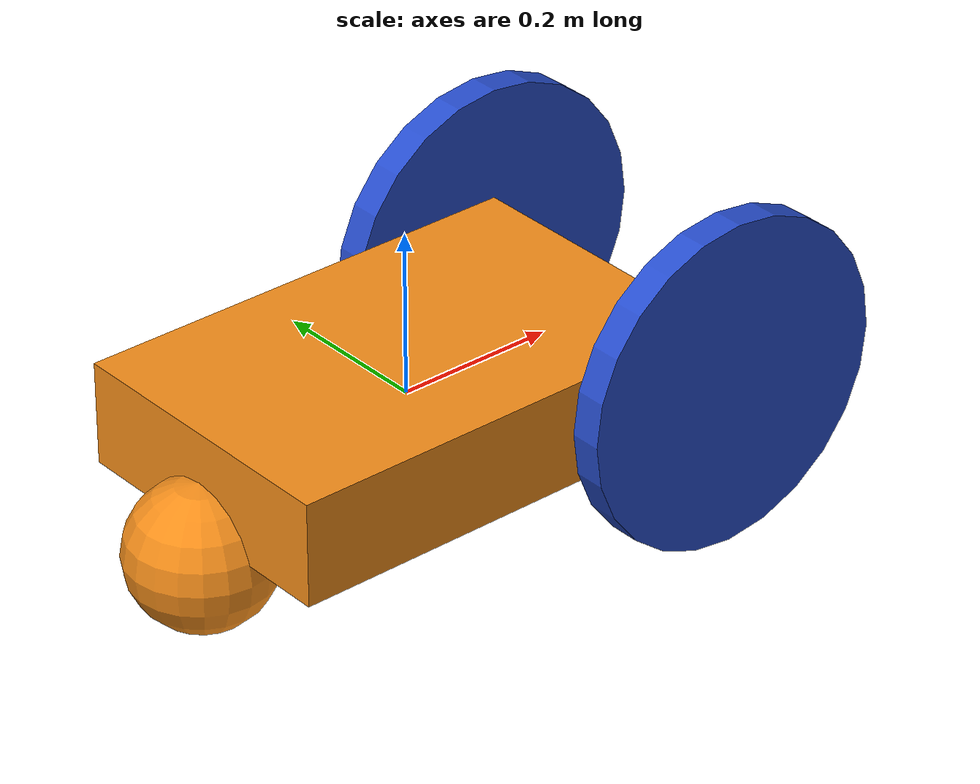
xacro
<?xml version='1.0'?>

<robot name="inmoov_base" xmlns:xacro="http://www.ros.org/wiki/xacro">

  <xacro:include filename="$(find inmoov_description)/urdf/inmoov_base.gazebo" />
  <xacro:include filename="$(find inmoov_description)/urdf/materials.urdf.xacro" />
  <xacro:include filename="$(find inmoov_description)/urdf/inmoov_base_macros.xacro" />

  <link name='chassis'>
    <pose>0 0 0.1 0 0 0</pose>

    <inertial>
      <mass value="15.0"/>
      <origin xyz="0.0 0 0.1" rpy=" 0 0 0"/>
      <inertia
          ixx="0.1" ixy="0" ixz="0"
          iyy="0.1" iyz="0"
          izz="0.1"
      />
    </inertial>

    <collision name='collision'>
      <geometry>
        <box size=".5715 .371475 .127"/>
      </geometry>
    </collision>

    <visual name='chassis_visual'>
      <origin xyz="0 0 0" rpy=" 0 0 0"/>
      <geometry>
        <box size=".5715 .371475 .127"/>
      </geometry>

    </visual>

    <collision name='caster_collision'>
      <origin xyz="-.28575 0 -0.0889" rpy=" 0 0 0"/>
      <geometry>
        <sphere radius="0.0889"/>
      </geometry>
      <surface>
        <friction>
          <ode>
            <mu>0</mu>
            <mu2>0</mu2>
            <slip1>1.0</slip1>
            <slip2>1.0</slip2>
          </ode>
        </friction>
      </surface>
    </collision>

    <visual name='caster_visual'>
      <origin xyz="-.28575 0 -0.0889" rpy=" 0 0 0"/>
      <geometry>
        <sphere radius="0.0889"/>
      </geometry>
    </visual>

  </link>

  <link name="base_laser_link">

  </link>

  <link name="left_wheel">
    <!--origin xyz="0.1 0.13 0.1" rpy="0 1.5707 1.5707"/-->
    <collision name="collision">
      <origin xyz="0 0 0" rpy="0 1.5707 1.5707"/>
      <geometry>
        <cylinder radius="0.2032" length="0.0381"/>
      </geometry>
    </collision>
    <visual name="left_wheel_visual">
      <origin xyz="0 0 0" rpy="0 1.5707 1.5707"/>
      <geometry>
        <cylinder radius="0.2032" length="0.0381"/>
      </geometry>
    </visual>
    <inertial>
      <origin xyz="0 0 0" rpy="0 1.5707 1.5707"/>
      <mass value="5"/>
      <inertia
        ixx=".1" ixy="0.0" ixz="0.0"
        iyy=".1" iyz="0.0"
        izz=".1"/>
    </inertial>
  </link>

  <link name="right_wheel">
    <!--origin xyz="0.1 -0.13 0.1" rpy="0 1.5707 1.5707"/-->
    <collision name="collision">
      <origin xyz="0 0 0" rpy="0 1.5707 1.5707"/>
      <geometry>
        <cylinder radius="0.2032" length="0.0381"/>
      </geometry>
    </collision>
    <visual name="right_wheel_visual">
      <origin xyz="0 0 0" rpy="0 1.5707 1.5707"/>
      <geometry>
        <cylinder radius="0.2032" length="0.0381"/>
      </geometry>
    </visual>
    <inertial>
      <origin xyz="0 0 0" rpy="0 1.5707 1.5707"/>
      <mass value="5"/>
      <inertia
        ixx=".1" ixy="0.0" ixz="0.0"
        iyy=".1" iyz="0.0"
        izz=".1"/>
    </inertial>
  </link>

  <joint type="continuous" name="left_wheel_hinge">
    <origin xyz=".28575 0.2047875 0" rpy="0 0 0"/>
    <!--origin xyz="0.1 0.13 0" rpy="0 1.5707 1.5707"/-->
    <child link="left_wheel"/>
    <parent link="chassis"/>
    <axis xyz="0 1 0" rpy="0 0 0"/>
    <limit effort="10000" velocity="1000"/>
    <joint_properties damping="1.0" friction="1.0"/>
  </joint>

  <joint type="continuous" name="right_wheel_hinge">
    <origin xyz=".28575 -0.2047875 0" rpy="0 0 0"/>
    <!--origin xyz="0.1 -0.13 0" rpy="0 1.5707 1.5707"/-->
    <child link="right_wheel"/>
    <parent link="chassis"/>
    <axis xyz="0 1 0" rpy="0 0 0"/>
    <limit effort="100" velocity="100"/>
    <joint_properties damping="1.0" friction="1.0"/>
  </joint>

    <joint name="laser_joint" type="fixed">
<origin rpy="0 0 0" xyz="0 0 0"/>
    <parent link="chassis"/>
    <child link="base_laser_link"/>
  </joint>

</robot>
